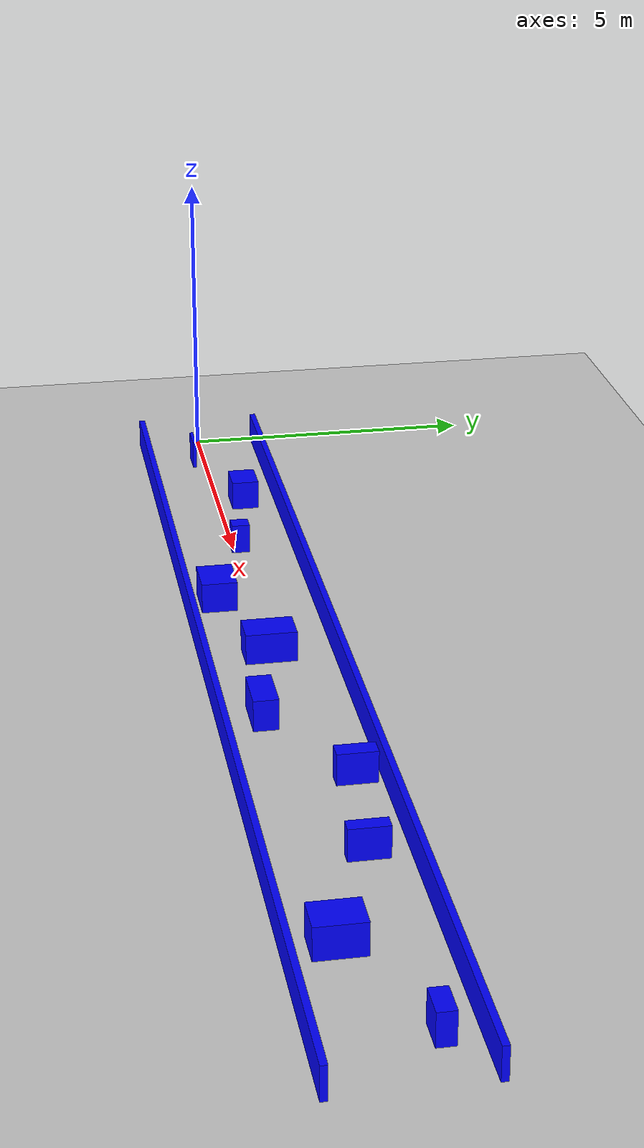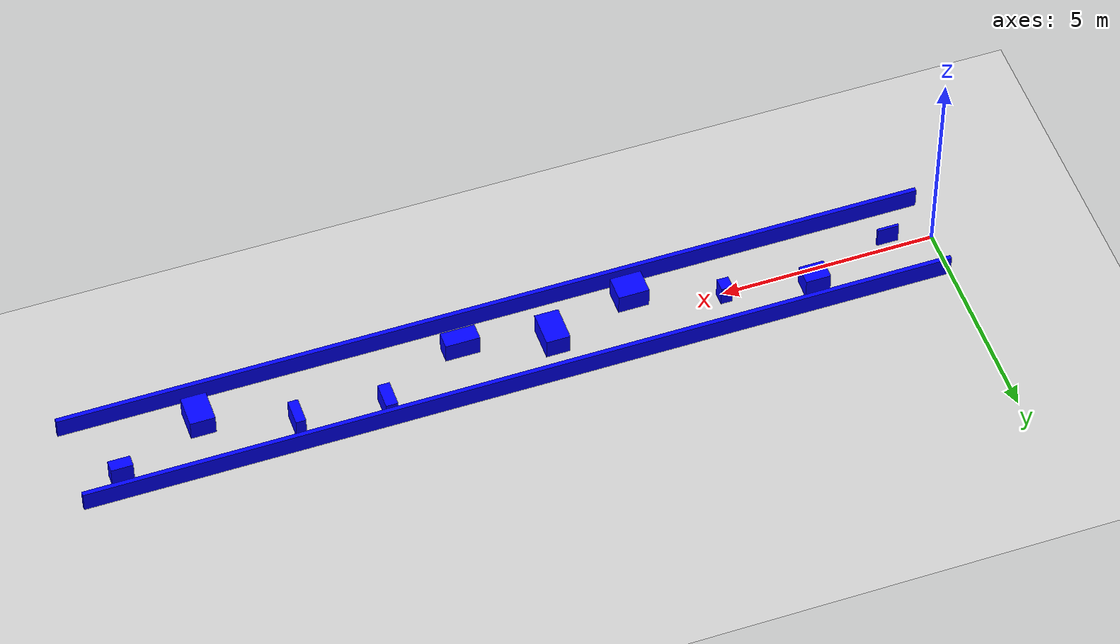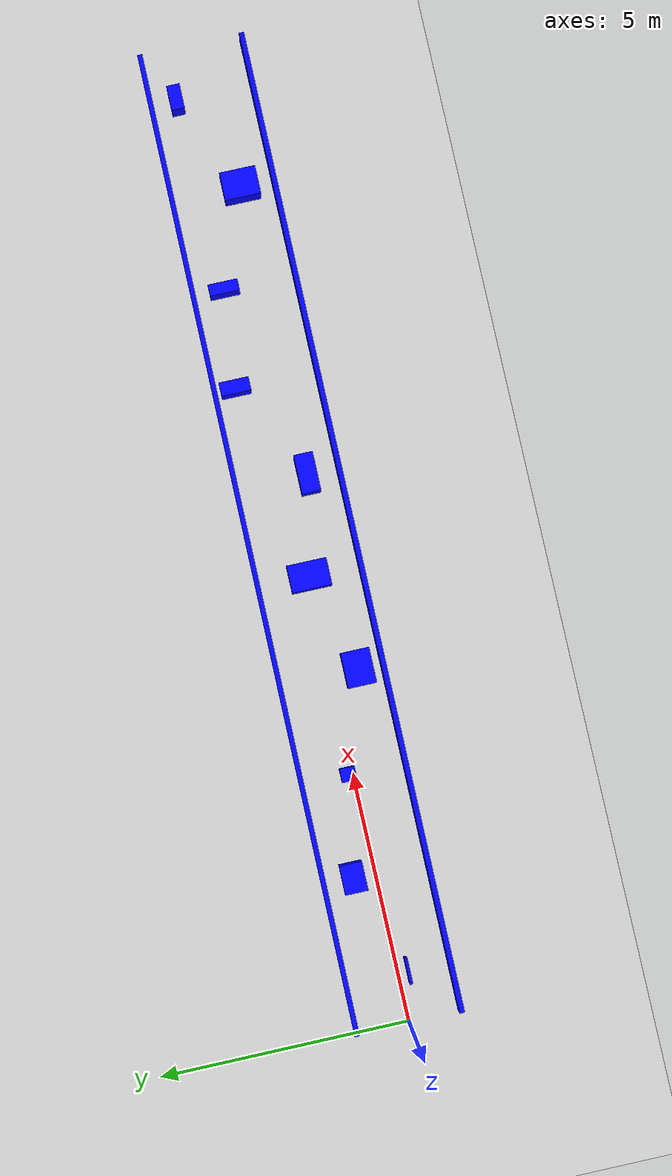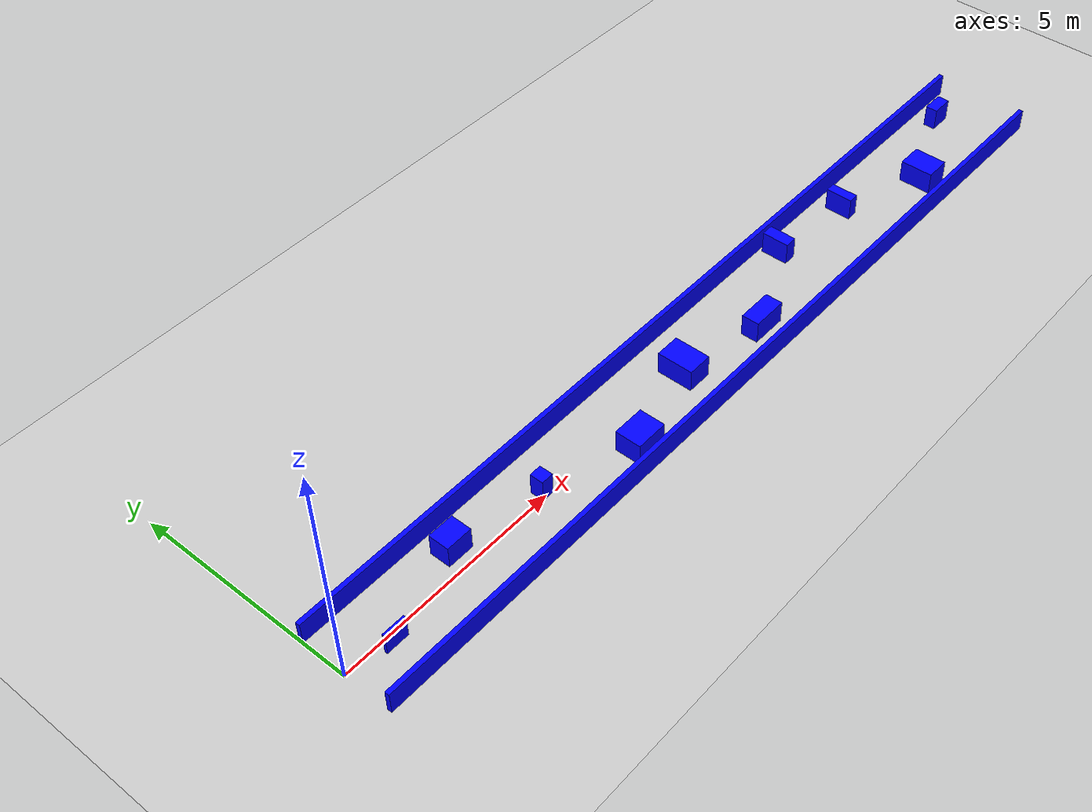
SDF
<?xml version="1.0" ?>
<!-- |    This document was autogenerated by xacro from world_demo.xacro               | -->
<!-- |    EDITING THIS FILE BY HAND IS NOT RECOMMENDED                                 | -->
<sdf version="1.8">
  <world name="world_demo">
    <physics name="1ms" type="ignored">
      <max_step_size>0.001</max_step_size>
      <real_time_factor>1.0</real_time_factor>
    </physics>
    <plugin filename="libgz-sim-physics-system.so" name="gz::sim::systems::Physics">
		</plugin>
    <plugin filename="libgz-sim-user-commands-system.so" name="gz::sim::systems::UserCommands">
		</plugin>
    <plugin filename="libgz-sim-scene-broadcaster-system.so" name="gz::sim::systems::SceneBroadcaster">
		</plugin>
    <plugin filename="libgz-sim-contact-system.so" name="gz::sim::systems::Contact">
		</plugin>
    <gui fullscreen="0">
      <!-- 3D scene -->
      <plugin filename="GzScene3D" name="3D View">
        <gz-gui>
          <title>3D View</title>
          <property key="showTitleBar" type="bool">false</property>
          <property key="state" type="string">docked</property>
        </gz-gui>
        <engine>ogre2</engine>
        <scene>scene</scene>
        <ambient_light>1.0 1.0 1.0</ambient_light>
        <background_color>0.8 0.8 0.8</background_color>
        <camera_pose>-6 0 6 0 0.5 0</camera_pose>
      </plugin>
      <!-- World control -->
      <plugin filename="WorldControl" name="World control">
        <gz-gui>
          <title>World control</title>
          <property key="showTitleBar" type="bool">false</property>
          <property key="resizable" type="bool">false</property>
          <property key="height" type="double">72</property>
          <property key="width" type="double">121</property>
          <property key="z" type="double">1</property>
          <property key="state" type="string">floating</property>
          <anchors target="3D View">
            <line own="left" target="left"/>
            <line own="bottom" target="bottom"/>
          </anchors>
        </gz-gui>
        <play_pause>true</play_pause>
        <step>true</step>
        <start_paused>true</start_paused>
        <service>/world/world_demo/control</service>
        <stats_topic>/world/world_demo/stats</stats_topic>
      </plugin>
      <!-- World statistics -->
      <plugin filename="WorldStats" name="World stats">
        <gz-gui>
          <title>World stats</title>
          <property key="showTitleBar" type="bool">false</property>
          <property key="resizable" type="bool">false</property>
          <property key="height" type="double">110</property>
          <property key="width" type="double">290</property>
          <property key="z" type="double">1</property>
          <property key="state" type="string">floating</property>
          <anchors target="3D View">
            <line own="right" target="right"/>
            <line own="bottom" target="bottom"/>
          </anchors>
        </gz-gui>
        <sim_time>true</sim_time>
        <real_time>true</real_time>
        <real_time_factor>true</real_time_factor>
        <iterations>true</iterations>
        <topic>/world/world_demo/stats</topic>
      </plugin>
      <!-- Entity tree -->
      <plugin filename="EntityTree" name="Entity tree">
			</plugin>
    </gui>
    <light name="sun" type="directional">
      <cast_shadows>true</cast_shadows>
      <pose>0 0 10 0 0 0</pose>
      <diffuse>0.8 0.8 0.8 1</diffuse>
      <specular>0.2 0.2 0.2 1</specular>
      <attenuation>
        <range>1000</range>
        <constant>0.9</constant>
        <linear>0.01</linear>
        <quadratic>0.001</quadratic>
      </attenuation>
      <direction>-0.5 0.1 -0.9</direction>
    </light>
    <model name="ground_plane">
      <static>true</static>
      <link name="link">
        <collision name="collision">
          <geometry>
            <plane>
              <normal>0 0 1</normal>
            </plane>
          </geometry>
        </collision>
        <visual name="visual">
          <geometry>
            <plane>
              <normal>0 0 1</normal>
              <size>100 100</size>
            </plane>
          </geometry>
          <material>
            <ambient>0.8 0.8 0.8 1</ambient>
            <diffuse>0.8 0.8 0.8 1</diffuse>
            <specular>0.8 0.8 0.8 1</specular>
          </material>
        </visual>
      </link>
    </model>
    <model name="Rwall">
      <static>true</static>
      <pose>10.0 -1.05 0.25 0 0 1.5707</pose>
      <!--pose relative to the world-->
      <link name="rwall">
        <visual name="visual">
          <geometry>
            <box>
              <size>0.1 20 .5</size>
            </box>
          </geometry>
          <material>
            <ambient>0.0 0.0 1.0 1</ambient>
            <diffuse>0.0 0.0 1.0 1</diffuse>
            <specular>0.0 0.0 1.0 1</specular>
          </material>
        </visual>
        <collision name="collision">
          <geometry>
            <box>
              <size>0.1 20.0 0.5</size>
            </box>
          </geometry>
        </collision>
        <sensor name="sensor_contact" type="contact">
          <contact>
            <collision>collision</collision>
          </contact>
        </sensor>
      </link>
      <plugin filename="libgz-sim-touchplugin-system" name="gz::sim::systems::TouchPlugin">
        <target>elgooso</target>
        <namespace>wall</namespace>
        <time>0.001</time>
        <enabled>true</enabled>
      </plugin>
    </model>
    <model name="Lwall">
      <static>true</static>
      <pose>10.0 1.05 0.25 0 0 1.5707</pose>
      <!--pose relative to the world-->
      <link name="lwall">
        <visual name="visual">
          <geometry>
            <box>
              <size>0.1 20 .5</size>
            </box>
          </geometry>
          <material>
            <ambient>0.0 0.0 1.0 1</ambient>
            <diffuse>0.0 0.0 1.0 1</diffuse>
            <specular>0.0 0.0 1.0 1</specular>
          </material>
        </visual>
        <collision name="collision">
          <geometry>
            <box>
              <size>0.1 20.0 0.5</size>
            </box>
          </geometry>
        </collision>
        <sensor name="sensor_contact" type="contact">
          <contact>
            <collision>collision</collision>
          </contact>
        </sensor>
      </link>
      <plugin filename="libgz-sim-touchplugin-system" name="gz::sim::systems::TouchPlugin">
        <target>elgooso</target>
        <namespace>wall</namespace>
        <time>0.001</time>
        <enabled>true</enabled>
      </plugin>
    </model>
    <model name="Box_0">
      <static>true</static>
      <pose>1 -0.2048246936247975 0.25 0 0 0</pose>
      <!--between -10 +sx/2, 10-sx/2; -1+sy/2 and 1 - sy/2; +sz/2
				every other square, so x = 2n - 1.5-->
      <link name="ball_1">
        <visual name="visual">
          <geometry>
            <box>
              <size>0.501517812962755 0.061709330925124206 0.5</size>
              <!--between 0-1; 0-1; 0-1 -->
            </box>
          </geometry>
          <material>
            <ambient>0.0 0.0 1.0 1</ambient>
            <diffuse>0.0 0.0 1.0 1</diffuse>
            <specular>0.0 0.0 1.0 1</specular>
          </material>
        </visual>
        <collision name="collision">
          <geometry>
            <box>
              <size>0.501517812962755 0.061709330925124206 0.5</size>
            </box>
          </geometry>
        </collision>
      </link>
    </model>
    <model name="Box_1">
      <static>true</static>
      <pose>3 0.4502996120754519 0.25 0 0 0</pose>
      <!--between -10 +sx/2, 10-sx/2; -1+sy/2 and 1 - sy/2; +sz/2
				every other square, so x = 2n - 1.5-->
      <link name="ball_1">
        <visual name="visual">
          <geometry>
            <box>
              <size>0.5823088092266435 0.46047375357604714 0.5</size>
              <!--between 0-1; 0-1; 0-1 -->
            </box>
          </geometry>
          <material>
            <ambient>0.0 0.0 1.0 1</ambient>
            <diffuse>0.0 0.0 1.0 1</diffuse>
            <specular>0.0 0.0 1.0 1</specular>
          </material>
        </visual>
        <collision name="collision">
          <geometry>
            <box>
              <size>0.5823088092266435 0.46047375357604714 0.5</size>
            </box>
          </geometry>
        </collision>
      </link>
    </model>
    <model name="Box_2">
      <static>true</static>
      <pose>5 0.10734758394727639 0.25 0 0 0</pose>
      <!--between -10 +sx/2, 10-sx/2; -1+sy/2 and 1 - sy/2; +sz/2
				every other square, so x = 2n - 1.5-->
      <link name="ball_1">
        <visual name="visual">
          <geometry>
            <box>
              <size>0.2722933992299311 0.30146477042220177 0.5</size>
              <!--between 0-1; 0-1; 0-1 -->
            </box>
          </geometry>
          <material>
            <ambient>0.0 0.0 1.0 1</ambient>
            <diffuse>0.0 0.0 1.0 1</diffuse>
            <specular>0.0 0.0 1.0 1</specular>
          </material>
        </visual>
        <collision name="collision">
          <geometry>
            <box>
              <size>0.2722933992299311 0.30146477042220177 0.5</size>
            </box>
          </geometry>
        </collision>
      </link>
    </model>
    <model name="Box_3">
      <static>true</static>
      <pose>7 -0.5492971473273365 0.25 0 0 0</pose>
      <!--between -10 +sx/2, 10-sx/2; -1+sy/2 and 1 - sy/2; +sz/2
				every other square, so x = 2n - 1.5-->
      <link name="ball_1">
        <visual name="visual">
          <geometry>
            <box>
              <size>0.7173946635695041 0.5795769806151234 0.5</size>
              <!--between 0-1; 0-1; 0-1 -->
            </box>
          </geometry>
          <material>
            <ambient>0.0 0.0 1.0 1</ambient>
            <diffuse>0.0 0.0 1.0 1</diffuse>
            <specular>0.0 0.0 1.0 1</specular>
          </material>
        </visual>
        <collision name="collision">
          <geometry>
            <box>
              <size>0.7173946635695041 0.5795769806151234 0.5</size>
            </box>
          </geometry>
        </collision>
      </link>
    </model>
    <model name="Box_4">
      <static>true</static>
      <pose>9 0.0029143865954759374 0.25 0 0 0</pose>
      <!--between -10 +sx/2, 10-sx/2; -1+sy/2 and 1 - sy/2; +sz/2
				every other square, so x = 2n - 1.5-->
      <link name="ball_1">
        <visual name="visual">
          <geometry>
            <box>
              <size>0.5538678061556 0.8082902227680747 0.5</size>
              <!--between 0-1; 0-1; 0-1 -->
            </box>
          </geometry>
          <material>
            <ambient>0.0 0.0 1.0 1</ambient>
            <diffuse>0.0 0.0 1.0 1</diffuse>
            <specular>0.0 0.0 1.0 1</specular>
          </material>
        </visual>
        <collision name="collision">
          <geometry>
            <box>
              <size>0.5538678061556 0.8082902227680747 0.5</size>
            </box>
          </geometry>
        </collision>
      </link>
    </model>
    <model name="Box_5">
      <static>true</static>
      <pose>11 -0.40389110133936773 0.25 0 0 0</pose>
      <!--between -10 +sx/2, 10-sx/2; -1+sy/2 and 1 - sy/2; +sz/2
				every other square, so x = 2n - 1.5-->
      <link name="ball_1">
        <visual name="visual">
          <geometry>
            <box>
              <size>0.7962826770117033 0.38741109277191643 0.5</size>
              <!--between 0-1; 0-1; 0-1 -->
            </box>
          </geometry>
          <material>
            <ambient>0.0 0.0 1.0 1</ambient>
            <diffuse>0.0 0.0 1.0 1</diffuse>
            <specular>0.0 0.0 1.0 1</specular>
          </material>
        </visual>
        <collision name="collision">
          <geometry>
            <box>
              <size>0.7962826770117033 0.38741109277191643 0.5</size>
            </box>
          </geometry>
        </collision>
      </link>
    </model>
    <model name="Box_6">
      <static>true</static>
      <pose>13 0.6266959470071585 0.25 0 0 0</pose>
      <!--between -10 +sx/2, 10-sx/2; -1+sy/2 and 1 - sy/2; +sz/2
				every other square, so x = 2n - 1.5-->
      <link name="ball_1">
        <visual name="visual">
          <geometry>
            <box>
              <size>0.2779791940761117 0.6074941568436524 0.5</size>
              <!--between 0-1; 0-1; 0-1 -->
            </box>
          </geometry>
          <material>
            <ambient>0.0 0.0 1.0 1</ambient>
            <diffuse>0.0 0.0 1.0 1</diffuse>
            <specular>0.0 0.0 1.0 1</specular>
          </material>
        </visual>
        <collision name="collision">
          <geometry>
            <box>
              <size>0.2779791940761117 0.6074941568436524 0.5</size>
            </box>
          </geometry>
        </collision>
      </link>
    </model>
    <model name="Box_7">
      <static>true</static>
      <pose>15 0.4166574632764295 0.25 0 0 0</pose>
      <!--between -10 +sx/2, 10-sx/2; -1+sy/2 and 1 - sy/2; +sz/2
				every other square, so x = 2n - 1.5-->
      <link name="ball_1">
        <visual name="visual">
          <geometry>
            <box>
              <size>0.23251419620052072 0.6026358344399457 0.5</size>
              <!--between 0-1; 0-1; 0-1 -->
            </box>
          </geometry>
          <material>
            <ambient>0.0 0.0 1.0 1</ambient>
            <diffuse>0.0 0.0 1.0 1</diffuse>
            <specular>0.0 0.0 1.0 1</specular>
          </material>
        </visual>
        <collision name="collision">
          <geometry>
            <box>
              <size>0.23251419620052072 0.6026358344399457 0.5</size>
            </box>
          </geometry>
        </collision>
      </link>
    </model>
    <model name="Box_8">
      <static>true</static>
      <pose>17 -0.3613933502233412 0.25 0 0 0</pose>
      <!--between -10 +sx/2, 10-sx/2; -1+sy/2 and 1 - sy/2; +sz/2
				every other square, so x = 2n - 1.5-->
      <link name="ball_1">
        <visual name="visual">
          <geometry>
            <box>
              <size>0.575945218857601 0.7338444608781854 0.5</size>
              <!--between 0-1; 0-1; 0-1 -->
            </box>
          </geometry>
          <material>
            <ambient>0.0 0.0 1.0 1</ambient>
            <diffuse>0.0 0.0 1.0 1</diffuse>
            <specular>0.0 0.0 1.0 1</specular>
          </material>
        </visual>
        <collision name="collision">
          <geometry>
            <box>
              <size>0.575945218857601 0.7338444608781854 0.5</size>
            </box>
          </geometry>
        </collision>
      </link>
    </model>
    <model name="Box_9">
      <static>true</static>
      <pose>19 0.5298112101924999 0.25 0 0 0</pose>
      <!--between -10 +sx/2, 10-sx/2; -1+sy/2 and 1 - sy/2; +sz/2
				every other square, so x = 2n - 1.5-->
      <link name="ball_1">
        <visual name="visual">
          <geometry>
            <box>
              <size>0.5046954672385177 0.26658715142777956 0.5</size>
              <!--between 0-1; 0-1; 0-1 -->
            </box>
          </geometry>
          <material>
            <ambient>0.0 0.0 1.0 1</ambient>
            <diffuse>0.0 0.0 1.0 1</diffuse>
            <specular>0.0 0.0 1.0 1</specular>
          </material>
        </visual>
        <collision name="collision">
          <geometry>
            <box>
              <size>0.5046954672385177 0.26658715142777956 0.5</size>
            </box>
          </geometry>
        </collision>
      </link>
    </model>
  </world>
</sdf>
